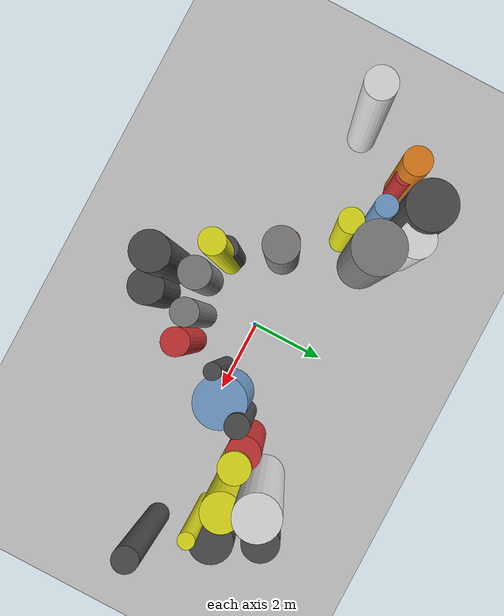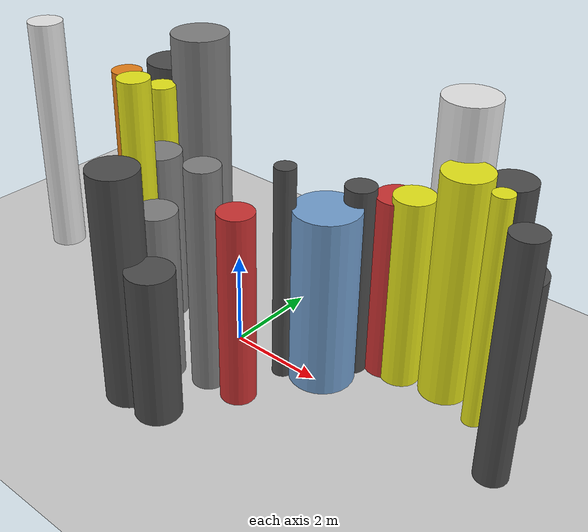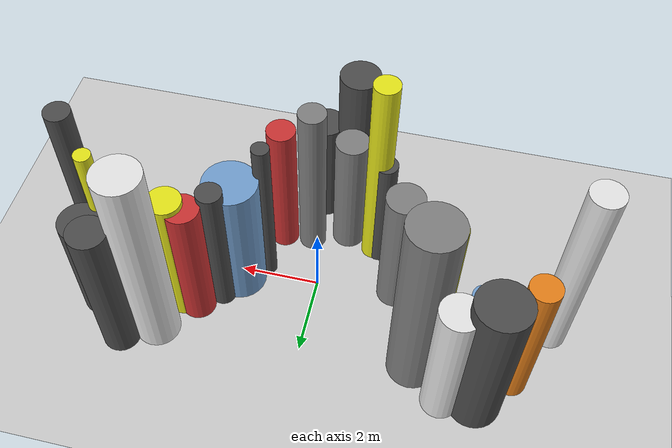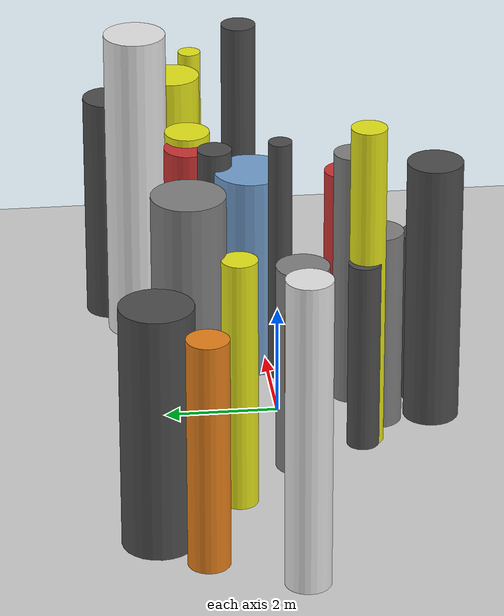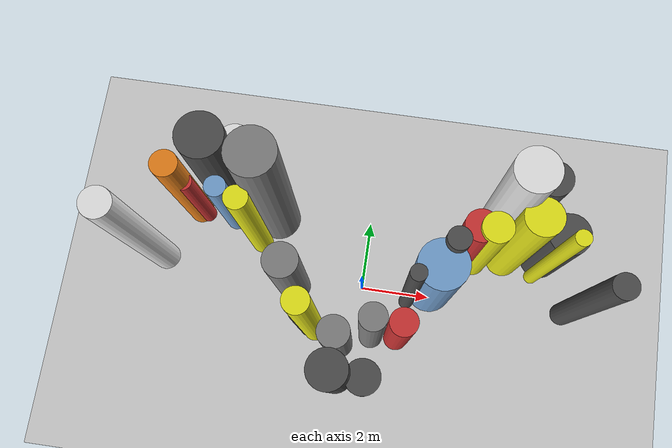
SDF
<?xml version='1.0'?>
<sdf version='1.6'>
  <world name='routeA_rl_v1__dense_recovery__rl_train__s_turn_multi_obstacle__000087'>
    <!-- Sun light -->
    <light name='sun' type='directional'>
      <cast_shadows>1</cast_shadows>
      <pose>0 0 10 0 0 0</pose>
      <diffuse>0.8 0.8 0.8 1</diffuse>
      <specular>0.2 0.2 0.2 1</specular>
      <attenuation>
        <range>1000</range>
        <constant>0.9</constant>
        <linear>0.01</linear>
        <quadratic>0.001</quadratic>
      </attenuation>
      <direction>-0.5 0.1 -0.9</direction>
    </light>

    <!-- Ground plane -->
    <model name='ground_plane'>
      <static>1</static>
      <link name='link'>
        <collision name='collision'>
          <geometry>
            <plane>
              <normal>0 0 1</normal>
              <size>100 100</size>
            </plane>
          </geometry>
          <surface>
            <contact>
              <collide_bitmask>65535</collide_bitmask>
              <ode/>
            </contact>
            <friction>
              <ode>
                <mu>100</mu>
                <mu2>50</mu2>
              </ode>
              <torsional><ode/></torsional>
            </friction>
            <bounce/>
          </surface>
          <max_contacts>10</max_contacts>
        </collision>
        <visual name='visual'>
          <cast_shadows>0</cast_shadows>
          <geometry>
            <plane>
              <normal>0 0 1</normal>
              <size>100 100</size>
            </plane>
          </geometry>
          <material>
            <script>
              <uri>file://media/materials/scripts/gazebo.material</uri>
              <n>Gazebo/Grey</n>
            </script>
          </material>
        </visual>
      </link>
    </model>

    <!-- Environment -->
    <magnetic_field>6e-06 2.3e-05 -4.2e-05</magnetic_field>
    <atmosphere type='adiabatic'/>
    <physics name='default_physics' default='0' type='ode'>
      <gravity>0 0 -9.8</gravity>
      <max_step_size>0.004</max_step_size>
      <real_time_factor>1</real_time_factor>
      <real_time_update_rate>250</real_time_update_rate>
    </physics>
    <scene>
      <ambient>0.4 0.4 0.4 1</ambient>
      <background>0.7 0.7 0.7 1</background>
      <shadows>1</shadows>
    </scene>
    <wind/>
    <spherical_coordinates>
      <surface_model>EARTH_WGS84</surface_model>
      <latitude_deg>0</latitude_deg>
      <longitude_deg>0</longitude_deg>
      <elevation>0</elevation>
      <heading_deg>0</heading_deg>
    </spherical_coordinates>

    <!-- ============ OBSTACLES (28) ============ -->
    <model name='s_turn_obs_0'>
      <static>1</static>
      <link name='link'>
        <visual name='visual'>
          <geometry>
            <cylinder>
              <radius>0.3951</radius>
              <length>5.5700</length>
            </cylinder>
          </geometry>
          <material>
            <script>
              <n>Gazebo/White</n>
              <uri>file://media/materials/scripts/gazebo.material</uri>
            </script>
            <ambient>0.9 0.9 0.9 1</ambient>
          </material>
        </visual>
        <collision name='collision'>
          <geometry>
            <cylinder>
              <radius>0.3951</radius>
              <length>5.5700</length>
            </cylinder>
          </geometry>
          <max_contacts>10</max_contacts>
          <surface>
            <contact><ode/></contact>
            <bounce/>
            <friction>
              <ode><mu>1</mu><mu2>1</mu2></ode>
              <torsional><ode/></torsional>
            </friction>
          </surface>
        </collision>
      </link>
      <pose>-6.0000 0.1650 2.7850 0 0 0.0000</pose>
    </model>

    <model name='s_turn_obs_1'>
      <static>1</static>
      <link name='link'>
        <visual name='visual'>
          <geometry>
            <cylinder>
              <radius>0.3633</radius>
              <length>4.1795</length>
            </cylinder>
          </geometry>
          <material>
            <script>
              <n>Gazebo/Orange</n>
              <uri>file://media/materials/scripts/gazebo.material</uri>
            </script>
            <ambient>0.9 0.5 0.1 1</ambient>
          </material>
        </visual>
        <collision name='collision'>
          <geometry>
            <cylinder>
              <radius>0.3633</radius>
              <length>4.1795</length>
            </cylinder>
          </geometry>
          <max_contacts>10</max_contacts>
          <surface>
            <contact><ode/></contact>
            <bounce/>
            <friction>
              <ode><mu>1</mu><mu2>1</mu2></ode>
              <torsional><ode/></torsional>
            </friction>
          </surface>
        </collision>
      </link>
      <pose>-5.2000 1.7206 2.0898 0 0 0.0000</pose>
    </model>

    <model name='s_turn_obs_2'>
      <static>1</static>
      <link name='link'>
        <visual name='visual'>
          <geometry>
            <cylinder>
              <radius>0.6342</radius>
              <length>4.4193</length>
            </cylinder>
          </geometry>
          <material>
            <script>
              <n>Gazebo/DarkGrey</n>
              <uri>file://media/materials/scripts/gazebo.material</uri>
            </script>
            <ambient>0.3 0.3 0.3 1</ambient>
          </material>
        </visual>
        <collision name='collision'>
          <geometry>
            <cylinder>
              <radius>0.6342</radius>
              <length>4.4193</length>
            </cylinder>
          </geometry>
          <max_contacts>10</max_contacts>
          <surface>
            <contact><ode/></contact>
            <bounce/>
            <friction>
              <ode><mu>1</mu><mu2>1</mu2></ode>
              <torsional><ode/></torsional>
            </friction>
          </surface>
        </collision>
      </link>
      <pose>-4.4000 2.4860 2.2097 0 0 0.0000</pose>
    </model>

    <model name='s_turn_obs_3'>
      <static>1</static>
      <link name='link'>
        <visual name='visual'>
          <geometry>
            <cylinder>
              <radius>0.4738</radius>
              <length>4.0208</length>
            </cylinder>
          </geometry>
          <material>
            <script>
              <n>Gazebo/White</n>
              <uri>file://media/materials/scripts/gazebo.material</uri>
            </script>
            <ambient>0.9 0.9 0.9 1</ambient>
          </material>
        </visual>
        <collision name='collision'>
          <geometry>
            <cylinder>
              <radius>0.4738</radius>
              <length>4.0208</length>
            </cylinder>
          </geometry>
          <max_contacts>10</max_contacts>
          <surface>
            <contact><ode/></contact>
            <bounce/>
            <friction>
              <ode><mu>1</mu><mu2>1</mu2></ode>
              <torsional><ode/></torsional>
            </friction>
          </surface>
        </collision>
      </link>
      <pose>-3.6000 2.5865 2.0104 0 0 0.0000</pose>
    </model>

    <model name='s_turn_obs_4'>
      <static>1</static>
      <link name='link'>
        <visual name='visual'>
          <geometry>
            <cylinder>
              <radius>0.6337</radius>
              <length>5.6246</length>
            </cylinder>
          </geometry>
          <material>
            <script>
              <n>Gazebo/Grey</n>
              <uri>file://media/materials/scripts/gazebo.material</uri>
            </script>
            <ambient>0.5 0.5 0.5 1</ambient>
          </material>
        </visual>
        <collision name='collision'>
          <geometry>
            <cylinder>
              <radius>0.6337</radius>
              <length>5.6246</length>
            </cylinder>
          </geometry>
          <max_contacts>10</max_contacts>
          <surface>
            <contact><ode/></contact>
            <bounce/>
            <friction>
              <ode><mu>1</mu><mu2>1</mu2></ode>
              <torsional><ode/></torsional>
            </friction>
          </surface>
        </collision>
      </link>
      <pose>-2.8000 1.8035 2.8123 0 0 0.0000</pose>
    </model>

    <model name='s_turn_obs_5'>
      <static>1</static>
      <link name='link'>
        <visual name='visual'>
          <geometry>
            <cylinder>
              <radius>0.4664</radius>
              <length>3.8306</length>
            </cylinder>
          </geometry>
          <material>
            <script>
              <n>Gazebo/Grey</n>
              <uri>file://media/materials/scripts/gazebo.material</uri>
            </script>
            <ambient>0.5 0.5 0.5 1</ambient>
          </material>
        </visual>
        <collision name='collision'>
          <geometry>
            <cylinder>
              <radius>0.4664</radius>
              <length>3.8306</length>
            </cylinder>
          </geometry>
          <max_contacts>10</max_contacts>
          <surface>
            <contact><ode/></contact>
            <bounce/>
            <friction>
              <ode><mu>1</mu><mu2>1</mu2></ode>
              <torsional><ode/></torsional>
            </friction>
          </surface>
        </collision>
      </link>
      <pose>-2.0000 -0.2110 1.9153 0 0 0.0000</pose>
    </model>

    <model name='s_turn_obs_6'>
      <static>1</static>
      <link name='link'>
        <visual name='visual'>
          <geometry>
            <cylinder>
              <radius>0.3143</radius>
              <length>5.9828</length>
            </cylinder>
          </geometry>
          <material>
            <script>
              <n>Gazebo/Yellow</n>
              <uri>file://media/materials/scripts/gazebo.material</uri>
            </script>
            <ambient>0.9 0.9 0.1 1</ambient>
          </material>
        </visual>
        <collision name='collision'>
          <geometry>
            <cylinder>
              <radius>0.3143</radius>
              <length>5.9828</length>
            </cylinder>
          </geometry>
          <max_contacts>10</max_contacts>
          <surface>
            <contact><ode/></contact>
            <bounce/>
            <friction>
              <ode><mu>1</mu><mu2>1</mu2></ode>
              <torsional><ode/></torsional>
            </friction>
          </surface>
        </collision>
      </link>
      <pose>-1.2000 -1.4301 2.9914 0 0 0.0000</pose>
    </model>

    <model name='s_turn_obs_7'>
      <static>1</static>
      <link name='link'>
        <visual name='visual'>
          <geometry>
            <cylinder>
              <radius>0.4934</radius>
              <length>4.9211</length>
            </cylinder>
          </geometry>
          <material>
            <script>
              <n>Gazebo/DarkGrey</n>
              <uri>file://media/materials/scripts/gazebo.material</uri>
            </script>
            <ambient>0.3 0.3 0.3 1</ambient>
          </material>
        </visual>
        <collision name='collision'>
          <geometry>
            <cylinder>
              <radius>0.4934</radius>
              <length>4.9211</length>
            </cylinder>
          </geometry>
          <max_contacts>10</max_contacts>
          <surface>
            <contact><ode/></contact>
            <bounce/>
            <friction>
              <ode><mu>1</mu><mu2>1</mu2></ode>
              <torsional><ode/></torsional>
            </friction>
          </surface>
        </collision>
      </link>
      <pose>-0.4000 -2.7053 2.4605 0 0 0.0000</pose>
    </model>

    <model name='s_turn_obs_8'>
      <static>1</static>
      <link name='link'>
        <visual name='visual'>
          <geometry>
            <cylinder>
              <radius>0.4663</radius>
              <length>3.1778</length>
            </cylinder>
          </geometry>
          <material>
            <script>
              <n>Gazebo/DarkGrey</n>
              <uri>file://media/materials/scripts/gazebo.material</uri>
            </script>
            <ambient>0.3 0.3 0.3 1</ambient>
          </material>
        </visual>
        <collision name='collision'>
          <geometry>
            <cylinder>
              <radius>0.4663</radius>
              <length>3.1778</length>
            </cylinder>
          </geometry>
          <max_contacts>10</max_contacts>
          <surface>
            <contact><ode/></contact>
            <bounce/>
            <friction>
              <ode><mu>1</mu><mu2>1</mu2></ode>
              <torsional><ode/></torsional>
            </friction>
          </surface>
        </collision>
      </link>
      <pose>0.4000 -2.7071 1.5889 0 0 0.0000</pose>
    </model>

    <model name='s_turn_obs_9'>
      <static>1</static>
      <link name='link'>
        <visual name='visual'>
          <geometry>
            <cylinder>
              <radius>0.3593</radius>
              <length>4.0978</length>
            </cylinder>
          </geometry>
          <material>
            <script>
              <n>Gazebo/Red</n>
              <uri>file://media/materials/scripts/gazebo.material</uri>
            </script>
            <ambient>0.8 0.2 0.2 1</ambient>
          </material>
        </visual>
        <collision name='collision'>
          <geometry>
            <cylinder>
              <radius>0.3593</radius>
              <length>4.0978</length>
            </cylinder>
          </geometry>
          <max_contacts>10</max_contacts>
          <surface>
            <contact><ode/></contact>
            <bounce/>
            <friction>
              <ode><mu>1</mu><mu2>1</mu2></ode>
              <torsional><ode/></torsional>
            </friction>
          </surface>
        </collision>
      </link>
      <pose>1.2000 -1.3305 2.0489 0 0 0.0000</pose>
    </model>

    <model name='s_turn_obs_10'>
      <static>1</static>
      <link name='link'>
        <visual name='visual'>
          <geometry>
            <cylinder>
              <radius>0.6696</radius>
              <length>3.8124</length>
            </cylinder>
          </geometry>
          <material>
            <script>
              <n>Gazebo/Blue</n>
              <uri>file://media/materials/scripts/gazebo.material</uri>
            </script>
            <ambient>0.447 0.624 0.812 1</ambient>
          </material>
        </visual>
        <collision name='collision'>
          <geometry>
            <cylinder>
              <radius>0.6696</radius>
              <length>3.8124</length>
            </cylinder>
          </geometry>
          <max_contacts>10</max_contacts>
          <surface>
            <contact><ode/></contact>
            <bounce/>
            <friction>
              <ode><mu>1</mu><mu2>1</mu2></ode>
              <torsional><ode/></torsional>
            </friction>
          </surface>
        </collision>
      </link>
      <pose>2.0000 0.2523 1.9062 0 0 0.0000</pose>
    </model>

    <model name='s_turn_obs_11'>
      <static>1</static>
      <link name='link'>
        <visual name='visual'>
          <geometry>
            <cylinder>
              <radius>0.4317</radius>
              <length>3.9418</length>
            </cylinder>
          </geometry>
          <material>
            <script>
              <n>Gazebo/Red</n>
              <uri>file://media/materials/scripts/gazebo.material</uri>
            </script>
            <ambient>0.8 0.2 0.2 1</ambient>
          </material>
        </visual>
        <collision name='collision'>
          <geometry>
            <cylinder>
              <radius>0.4317</radius>
              <length>3.9418</length>
            </cylinder>
          </geometry>
          <max_contacts>10</max_contacts>
          <surface>
            <contact><ode/></contact>
            <bounce/>
            <friction>
              <ode><mu>1</mu><mu2>1</mu2></ode>
              <torsional><ode/></torsional>
            </friction>
          </surface>
        </collision>
      </link>
      <pose>2.8000 1.3181 1.9709 0 0 0.0000</pose>
    </model>

    <model name='s_turn_obs_12'>
      <static>1</static>
      <link name='link'>
        <visual name='visual'>
          <geometry>
            <cylinder>
              <radius>0.5611</radius>
              <length>5.8622</length>
            </cylinder>
          </geometry>
          <material>
            <script>
              <n>Gazebo/White</n>
              <uri>file://media/materials/scripts/gazebo.material</uri>
            </script>
            <ambient>0.9 0.9 0.9 1</ambient>
          </material>
        </visual>
        <collision name='collision'>
          <geometry>
            <cylinder>
              <radius>0.5611</radius>
              <length>5.8622</length>
            </cylinder>
          </geometry>
          <max_contacts>10</max_contacts>
          <surface>
            <contact><ode/></contact>
            <bounce/>
            <friction>
              <ode><mu>1</mu><mu2>1</mu2></ode>
              <torsional><ode/></torsional>
            </friction>
          </surface>
        </collision>
      </link>
      <pose>3.6000 2.1891 2.9311 0 0 0.0000</pose>
    </model>

    <model name='s_turn_obs_13'>
      <static>1</static>
      <link name='link'>
        <visual name='visual'>
          <geometry>
            <cylinder>
              <radius>0.4627</radius>
              <length>4.2988</length>
            </cylinder>
          </geometry>
          <material>
            <script>
              <n>Gazebo/DarkGrey</n>
              <uri>file://media/materials/scripts/gazebo.material</uri>
            </script>
            <ambient>0.3 0.3 0.3 1</ambient>
          </material>
        </visual>
        <collision name='collision'>
          <geometry>
            <cylinder>
              <radius>0.4627</radius>
              <length>4.2988</length>
            </cylinder>
          </geometry>
          <max_contacts>10</max_contacts>
          <surface>
            <contact><ode/></contact>
            <bounce/>
            <friction>
              <ode><mu>1</mu><mu2>1</mu2></ode>
              <torsional><ode/></torsional>
            </friction>
          </surface>
        </collision>
      </link>
      <pose>4.4000 2.6373 2.1494 0 0 0.0000</pose>
    </model>

    <model name='s_turn_obs_14'>
      <static>1</static>
      <link name='link'>
        <visual name='visual'>
          <geometry>
            <cylinder>
              <radius>0.5644</radius>
              <length>3.1448</length>
            </cylinder>
          </geometry>
          <material>
            <script>
              <n>Gazebo/DarkGrey</n>
              <uri>file://media/materials/scripts/gazebo.material</uri>
            </script>
            <ambient>0.3 0.3 0.3 1</ambient>
          </material>
        </visual>
        <collision name='collision'>
          <geometry>
            <cylinder>
              <radius>0.5644</radius>
              <length>3.1448</length>
            </cylinder>
          </geometry>
          <max_contacts>10</max_contacts>
          <surface>
            <contact><ode/></contact>
            <bounce/>
            <friction>
              <ode><mu>1</mu><mu2>1</mu2></ode>
              <torsional><ode/></torsional>
            </friction>
          </surface>
        </collision>
      </link>
      <pose>5.2000 1.6368 1.5724 0 0 0.0000</pose>
    </model>

    <model name='s_turn_obs_15'>
      <static>1</static>
      <link name='link'>
        <visual name='visual'>
          <geometry>
            <cylinder>
              <radius>0.3255</radius>
              <length>4.9701</length>
            </cylinder>
          </geometry>
          <material>
            <script>
              <n>Gazebo/DarkGrey</n>
              <uri>file://media/materials/scripts/gazebo.material</uri>
            </script>
            <ambient>0.3 0.3 0.3 1</ambient>
          </material>
        </visual>
        <collision name='collision'>
          <geometry>
            <cylinder>
              <radius>0.3255</radius>
              <length>4.9701</length>
            </cylinder>
          </geometry>
          <max_contacts>10</max_contacts>
          <surface>
            <contact><ode/></contact>
            <bounce/>
            <friction>
              <ode><mu>1</mu><mu2>1</mu2></ode>
              <torsional><ode/></torsional>
            </friction>
          </surface>
        </collision>
      </link>
      <pose>6.0000 0.0646 2.4851 0 0 0.0000</pose>
    </model>

    <model name='s_turn_obs2_0'>
      <static>1</static>
      <link name='link'>
        <visual name='visual'>
          <geometry>
            <cylinder>
              <radius>0.2477</radius>
              <length>3.0703</length>
            </cylinder>
          </geometry>
          <material>
            <script>
              <n>Gazebo/Red</n>
              <uri>file://media/materials/scripts/gazebo.material</uri>
            </script>
            <ambient>0.8 0.2 0.2 1</ambient>
          </material>
        </visual>
        <collision name='collision'>
          <geometry>
            <cylinder>
              <radius>0.2477</radius>
              <length>3.0703</length>
            </cylinder>
          </geometry>
          <max_contacts>10</max_contacts>
          <surface>
            <contact><ode/></contact>
            <bounce/>
            <friction>
              <ode><mu>1</mu><mu2>1</mu2></ode>
              <torsional><ode/></torsional>
            </friction>
          </surface>
        </collision>
      </link>
      <pose>-5.0000 1.6547 1.5352 0 0 0.0000</pose>
    </model>

    <model name='s_turn_obs2_1'>
      <static>1</static>
      <link name='link'>
        <visual name='visual'>
          <geometry>
            <cylinder>
              <radius>0.2986</radius>
              <length>3.2690</length>
            </cylinder>
          </geometry>
          <material>
            <script>
              <n>Gazebo/Blue</n>
              <uri>file://media/materials/scripts/gazebo.material</uri>
            </script>
            <ambient>0.447 0.624 0.812 1</ambient>
          </material>
        </visual>
        <collision name='collision'>
          <geometry>
            <cylinder>
              <radius>0.2986</radius>
              <length>3.2690</length>
            </cylinder>
          </geometry>
          <max_contacts>10</max_contacts>
          <surface>
            <contact><ode/></contact>
            <bounce/>
            <friction>
              <ode><mu>1</mu><mu2>1</mu2></ode>
              <torsional><ode/></torsional>
            </friction>
          </surface>
        </collision>
      </link>
      <pose>-4.0909 1.5912 1.6345 0 0 0.0000</pose>
    </model>

    <model name='s_turn_obs2_2'>
      <static>1</static>
      <link name='link'>
        <visual name='visual'>
          <geometry>
            <cylinder>
              <radius>0.3119</radius>
              <length>4.5862</length>
            </cylinder>
          </geometry>
          <material>
            <script>
              <n>Gazebo/Yellow</n>
              <uri>file://media/materials/scripts/gazebo.material</uri>
            </script>
            <ambient>0.9 0.9 0.1 1</ambient>
          </material>
        </visual>
        <collision name='collision'>
          <geometry>
            <cylinder>
              <radius>0.3119</radius>
              <length>4.5862</length>
            </cylinder>
          </geometry>
          <max_contacts>10</max_contacts>
          <surface>
            <contact><ode/></contact>
            <bounce/>
            <friction>
              <ode><mu>1</mu><mu2>1</mu2></ode>
              <torsional><ode/></torsional>
            </friction>
          </surface>
        </collision>
      </link>
      <pose>-3.1818 0.9927 2.2931 0 0 0.0000</pose>
    </model>

    <model name='s_turn_obs2_3'>
      <static>1</static>
      <link name='link'>
        <visual name='visual'>
          <geometry>
            <cylinder>
              <radius>0.2471</radius>
              <length>3.0840</length>
            </cylinder>
          </geometry>
          <material>
            <script>
              <n>Gazebo/Orange</n>
              <uri>file://media/materials/scripts/gazebo.material</uri>
            </script>
            <ambient>0.9 0.5 0.1 1</ambient>
          </material>
        </visual>
        <collision name='collision'>
          <geometry>
            <cylinder>
              <radius>0.2471</radius>
              <length>3.0840</length>
            </cylinder>
          </geometry>
          <max_contacts>10</max_contacts>
          <surface>
            <contact><ode/></contact>
            <bounce/>
            <friction>
              <ode><mu>1</mu><mu2>1</mu2></ode>
              <torsional><ode/></torsional>
            </friction>
          </surface>
        </collision>
      </link>
      <pose>-2.2727 -0.1074 1.5420 0 0 0.0000</pose>
    </model>

    <model name='s_turn_obs2_4'>
      <static>1</static>
      <link name='link'>
        <visual name='visual'>
          <geometry>
            <cylinder>
              <radius>0.2847</radius>
              <length>3.5110</length>
            </cylinder>
          </geometry>
          <material>
            <script>
              <n>Gazebo/DarkGrey</n>
              <uri>file://media/materials/scripts/gazebo.material</uri>
            </script>
            <ambient>0.3 0.3 0.3 1</ambient>
          </material>
        </visual>
        <collision name='collision'>
          <geometry>
            <cylinder>
              <radius>0.2847</radius>
              <length>3.5110</length>
            </cylinder>
          </geometry>
          <max_contacts>10</max_contacts>
          <surface>
            <contact><ode/></contact>
            <bounce/>
            <friction>
              <ode><mu>1</mu><mu2>1</mu2></ode>
              <torsional><ode/></torsional>
            </friction>
          </surface>
        </collision>
      </link>
      <pose>-1.3636 -1.3609 1.7555 0 0 0.0000</pose>
    </model>

    <model name='s_turn_obs2_5'>
      <static>1</static>
      <link name='link'>
        <visual name='visual'>
          <geometry>
            <cylinder>
              <radius>0.4214</radius>
              <length>3.6767</length>
            </cylinder>
          </geometry>
          <material>
            <script>
              <n>Gazebo/Grey</n>
              <uri>file://media/materials/scripts/gazebo.material</uri>
            </script>
            <ambient>0.5 0.5 0.5 1</ambient>
          </material>
        </visual>
        <collision name='collision'>
          <geometry>
            <cylinder>
              <radius>0.4214</radius>
              <length>3.6767</length>
            </cylinder>
          </geometry>
          <max_contacts>10</max_contacts>
          <surface>
            <contact><ode/></contact>
            <bounce/>
            <friction>
              <ode><mu>1</mu><mu2>1</mu2></ode>
              <torsional><ode/></torsional>
            </friction>
          </surface>
        </collision>
      </link>
      <pose>-0.4545 -1.7435 1.8383 0 0 0.0000</pose>
    </model>

    <model name='s_turn_obs2_6'>
      <static>1</static>
      <link name='link'>
        <visual name='visual'>
          <geometry>
            <cylinder>
              <radius>0.3461</radius>
              <length>4.7775</length>
            </cylinder>
          </geometry>
          <material>
            <script>
              <n>Gazebo/Grey</n>
              <uri>file://media/materials/scripts/gazebo.material</uri>
            </script>
            <ambient>0.5 0.5 0.5 1</ambient>
          </material>
        </visual>
        <collision name='collision'>
          <geometry>
            <cylinder>
              <radius>0.3461</radius>
              <length>4.7775</length>
            </cylinder>
          </geometry>
          <max_contacts>10</max_contacts>
          <surface>
            <contact><ode/></contact>
            <bounce/>
            <friction>
              <ode><mu>1</mu><mu2>1</mu2></ode>
              <torsional><ode/></torsional>
            </friction>
          </surface>
        </collision>
      </link>
      <pose>0.4545 -1.3876 2.3887 0 0 0.0000</pose>
    </model>

    <model name='s_turn_obs2_7'>
      <static>1</static>
      <link name='link'>
        <visual name='visual'>
          <geometry>
            <cylinder>
              <radius>0.2144</radius>
              <length>4.6284</length>
            </cylinder>
          </geometry>
          <material>
            <script>
              <n>Gazebo/DarkGrey</n>
              <uri>file://media/materials/scripts/gazebo.material</uri>
            </script>
            <ambient>0.3 0.3 0.3 1</ambient>
          </material>
        </visual>
        <collision name='collision'>
          <geometry>
            <cylinder>
              <radius>0.2144</radius>
              <length>4.6284</length>
            </cylinder>
          </geometry>
          <max_contacts>10</max_contacts>
          <surface>
            <contact><ode/></contact>
            <bounce/>
            <friction>
              <ode><mu>1</mu><mu2>1</mu2></ode>
              <torsional><ode/></torsional>
            </friction>
          </surface>
        </collision>
      </link>
      <pose>1.3636 -0.2050 2.3142 0 0 0.0000</pose>
    </model>

    <model name='s_turn_obs2_8'>
      <static>1</static>
      <link name='link'>
        <visual name='visual'>
          <geometry>
            <cylinder>
              <radius>0.3123</radius>
              <length>4.1222</length>
            </cylinder>
          </geometry>
          <material>
            <script>
              <n>Gazebo/DarkGrey</n>
              <uri>file://media/materials/scripts/gazebo.material</uri>
            </script>
            <ambient>0.3 0.3 0.3 1</ambient>
          </material>
        </visual>
        <collision name='collision'>
          <geometry>
            <cylinder>
              <radius>0.3123</radius>
              <length>4.1222</length>
            </cylinder>
          </geometry>
          <max_contacts>10</max_contacts>
          <surface>
            <contact><ode/></contact>
            <bounce/>
            <friction>
              <ode><mu>1</mu><mu2>1</mu2></ode>
              <torsional><ode/></torsional>
            </friction>
          </surface>
        </collision>
      </link>
      <pose>2.2727 0.8803 2.0611 0 0 0.0000</pose>
    </model>

    <model name='s_turn_obs2_9'>
      <static>1</static>
      <link name='link'>
        <visual name='visual'>
          <geometry>
            <cylinder>
              <radius>0.4098</radius>
              <length>4.0855</length>
            </cylinder>
          </geometry>
          <material>
            <script>
              <n>Gazebo/Yellow</n>
              <uri>file://media/materials/scripts/gazebo.material</uri>
            </script>
            <ambient>0.9 0.9 0.1 1</ambient>
          </material>
        </visual>
        <collision name='collision'>
          <geometry>
            <cylinder>
              <radius>0.4098</radius>
              <length>4.0855</length>
            </cylinder>
          </geometry>
          <max_contacts>10</max_contacts>
          <surface>
            <contact><ode/></contact>
            <bounce/>
            <friction>
              <ode><mu>1</mu><mu2>1</mu2></ode>
              <torsional><ode/></torsional>
            </friction>
          </surface>
        </collision>
      </link>
      <pose>3.1818 1.2897 2.0428 0 0 0.0000</pose>
    </model>

    <model name='s_turn_obs2_10'>
      <static>1</static>
      <link name='link'>
        <visual name='visual'>
          <geometry>
            <cylinder>
              <radius>0.4919</radius>
              <length>4.8214</length>
            </cylinder>
          </geometry>
          <material>
            <script>
              <n>Gazebo/Yellow</n>
              <uri>file://media/materials/scripts/gazebo.material</uri>
            </script>
            <ambient>0.9 0.9 0.1 1</ambient>
          </material>
        </visual>
        <collision name='collision'>
          <geometry>
            <cylinder>
              <radius>0.4919</radius>
              <length>4.8214</length>
            </cylinder>
          </geometry>
          <max_contacts>10</max_contacts>
          <surface>
            <contact><ode/></contact>
            <bounce/>
            <friction>
              <ode><mu>1</mu><mu2>1</mu2></ode>
              <torsional><ode/></torsional>
            </friction>
          </surface>
        </collision>
      </link>
      <pose>4.0909 1.4735 2.4107 0 0 0.0000</pose>
    </model>

    <model name='s_turn_obs2_11'>
      <static>1</static>
      <link name='link'>
        <visual name='visual'>
          <geometry>
            <cylinder>
              <radius>0.2061</radius>
              <length>4.8810</length>
            </cylinder>
          </geometry>
          <material>
            <script>
              <n>Gazebo/Yellow</n>
              <uri>file://media/materials/scripts/gazebo.material</uri>
            </script>
            <ambient>0.9 0.9 0.1 1</ambient>
          </material>
        </visual>
        <collision name='collision'>
          <geometry>
            <cylinder>
              <radius>0.2061</radius>
              <length>4.8810</length>
            </cylinder>
          </geometry>
          <max_contacts>10</max_contacts>
          <surface>
            <contact><ode/></contact>
            <bounce/>
            <friction>
              <ode><mu>1</mu><mu2>1</mu2></ode>
              <torsional><ode/></torsional>
            </friction>
          </surface>
        </collision>
      </link>
      <pose>5.0000 1.0781 2.4405 0 0 0.0000</pose>
    </model>

    <!-- GUI camera -->
    <gui fullscreen='0'>
      <camera name='user_camera'>
        <pose>-15 0 18 0 0.85 0.15</pose>
        <view_controller>orbit</view_controller>
        <projection_type>perspective</projection_type>
      </camera>
    </gui>
  </world>
</sdf>
